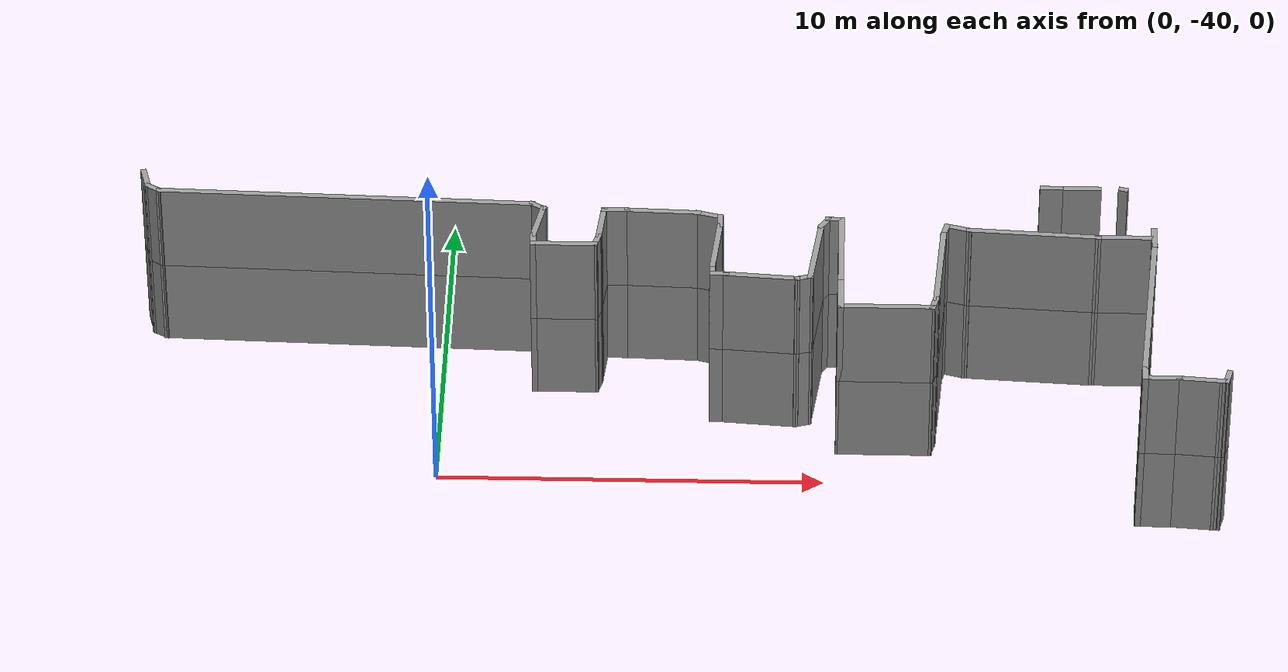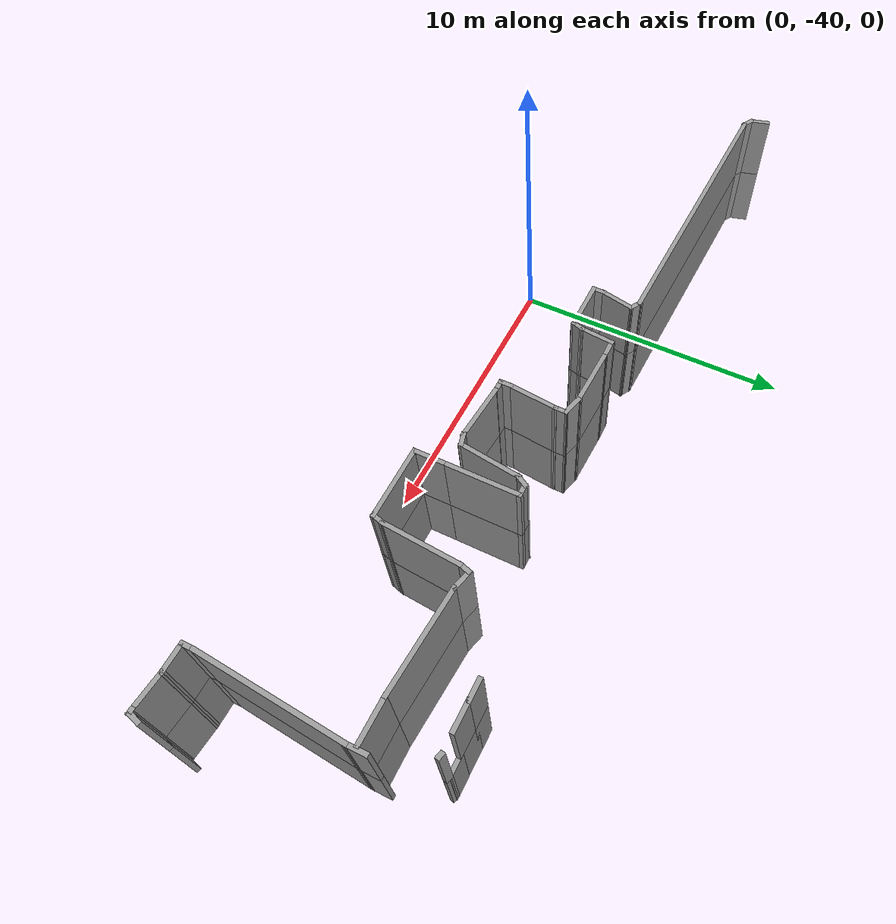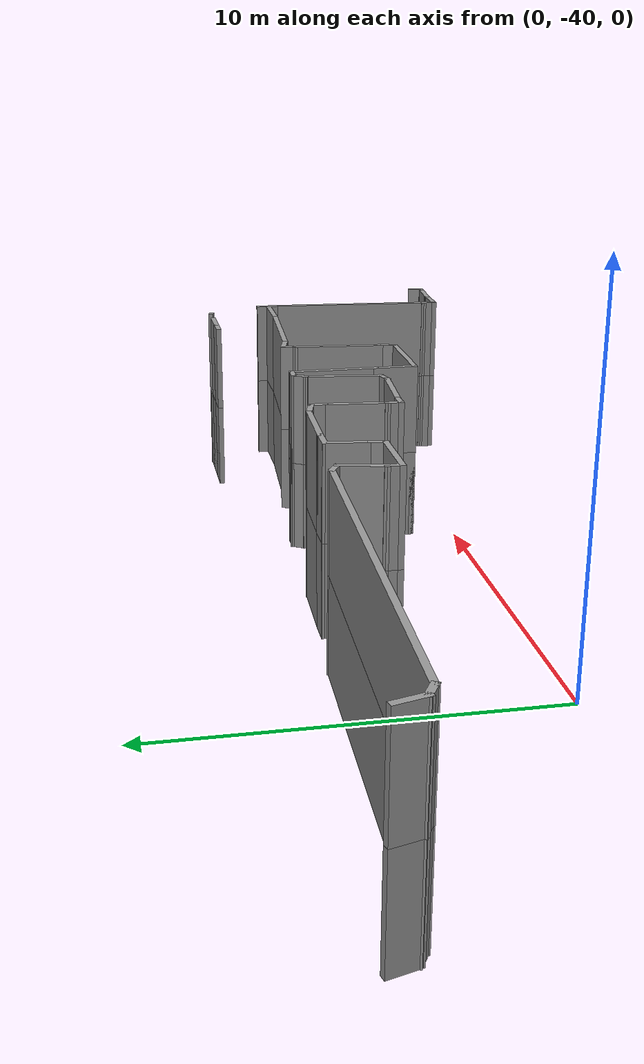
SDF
<sdf version="1.7">
 <model name="EnvDC00">
  <pose>8.4191 -5.62635 0 0 -0 0</pose>
  <link name="Wall_130">
   <collision name="Wall_130_Collision">
    <geometry><box><size>0.75 0.15 2.5</size></box></geometry>
    <pose>0 0 1.25 0 -0 0</pose>
   </collision>
   <visual name="Wall_130_Visual">
    <pose>0 0 1.25 0 -0 0</pose>
    <geometry><box><size>0.75 0.15 2.5</size></box></geometry>
    <material>
     <script><uri>file://media/materials/scripts/gazebo.material</uri><name>Gazebo/Grey</name></script>
     <ambient>1 1 1 1</ambient>
    </material>
    <meta><layer>0</layer></meta>
   </visual>
   <pose>-16.1981 -28.4923 0 0 -0 1.8326</pose>
  </link>
  <link name="Wall_199">
   <collision name="Wall_199_Collision">
    <geometry><box><size>0.75 0.15 2.5</size></box></geometry>
    <pose>0 0 1.25 0 -0 0</pose>
   </collision>
   <visual name="Wall_199_Visual">
    <pose>0 0 1.25 0 -0 0</pose>
    <geometry><box><size>0.75 0.15 2.5</size></box></geometry>
    <material>
     <script><uri>file://media/materials/scripts/gazebo.material</uri><name>Gazebo/Grey</name></script>
     <ambient>1 1 1 1</ambient>
    </material>
    <meta><layer>0</layer></meta>
   </visual>
   <pose>7.47234 -28.3016 0 0 -0 0</pose>
  </link>
  <link name="Wall_200">
   <collision name="Wall_200_Collision">
    <geometry><box><size>1 0.15 2.5</size></box></geometry>
    <pose>0 0 1.25 0 -0 0</pose>
   </collision>
   <visual name="Wall_200_Visual">
    <pose>0 0 1.25 0 -0 0</pose>
    <geometry><box><size>1 0.15 2.5</size></box></geometry>
    <material>
     <script><uri>file://media/materials/scripts/gazebo.material</uri><name>Gazebo/Grey</name></script>
     <ambient>1 1 1 1</ambient>
    </material>
    <meta><layer>0</layer></meta>
   </visual>
   <pose>8.19734 -28.3016 0 0 -0 0</pose>
  </link>
  <link name="Wall_201">
   <collision name="Wall_201_Collision">
    <geometry><box><size>0.75 0.15 2.5</size></box></geometry>
    <pose>0 0 1.25 0 -0 0</pose>
   </collision>
   <visual name="Wall_201_Visual">
    <pose>0 0 1.25 0 -0 0</pose>
    <geometry><box><size>0.75 0.15 2.5</size></box></geometry>
    <material>
     <script><uri>file://media/materials/scripts/gazebo.material</uri><name>Gazebo/Grey</name></script>
     <ambient>1 1 1 1</ambient>
    </material>
    <meta><layer>0</layer></meta>
   </visual>
   <pose>8.92234 -28.3016 0 0 -0 0</pose>
  </link>
  <link name="Wall_202">
   <collision name="Wall_202_Collision">
    <geometry><box><size>0.25 0.15 2.5</size></box></geometry>
    <pose>0 0 1.25 0 -0 0</pose>
   </collision>
   <visual name="Wall_202_Visual">
    <pose>0 0 1.25 0 -0 0</pose>
    <geometry><box><size>0.25 0.15 2.5</size></box></geometry>
    <material>
     <script><uri>file://media/materials/scripts/gazebo.material</uri><name>Gazebo/Grey</name></script>
     <ambient>1 1 1 1</ambient>
    </material>
    <meta><layer>0</layer></meta>
   </visual>
   <pose>9.27064 -28.3145 0 0 -0 -0.261799</pose>
  </link>
  <link name="Wall_207">
   <collision name="Wall_207_Collision">
    <geometry><box><size>0.25 0.15 2.5</size></box></geometry>
    <pose>0 0 1.25 0 -0 0</pose>
   </collision>
   <visual name="Wall_207_Visual">
    <pose>0 0 1.25 0 -0 0</pose>
    <geometry><box><size>0.25 0.15 2.5</size></box></geometry>
    <material>
     <script><uri>file://media/materials/scripts/gazebo.material</uri><name>Gazebo/Grey</name></script>
     <ambient>1 1 1 1</ambient>
    </material>
    <meta><layer>0</layer></meta>
   </visual>
   <pose>11.6412 -35.8531 0 0 -0 3.14159</pose>
  </link>
  <link name="Wall_208">
   <collision name="Wall_208_Collision">
    <geometry><box><size>1.24184 0.15 2.5</size></box></geometry>
    <pose>0 0 1.25 0 -0 0</pose>
   </collision>
   <visual name="Wall_208_Visual">
    <pose>0 0 1.25 0 -0 0</pose>
    <geometry><box><size>1.24184 0.15 2.5</size></box></geometry>
    <material>
     <script><uri>file://media/materials/scripts/gazebo.material</uri><name>Gazebo/Grey</name></script>
     <ambient>1 1 1 1</ambient>
    </material>
    <meta><layer>0</layer></meta>
   </visual>
   <pose>11.0472 -35.8078 0 0 -0 3.05853</pose>
  </link>
  <link name="Wall_209">
   <collision name="Wall_209_Collision">
    <geometry><box><size>1 0.15 2.5</size></box></geometry>
    <pose>0 0 1.25 0 -0 0</pose>
   </collision>
   <visual name="Wall_209_Visual">
    <pose>0 0 1.25 0 -0 0</pose>
    <geometry><box><size>1 0.15 2.5</size></box></geometry>
    <material>
     <script><uri>file://media/materials/scripts/gazebo.material</uri><name>Gazebo/Grey</name></script>
     <ambient>1 1 1 1</ambient>
    </material>
    <meta><layer>0</layer></meta>
   </visual>
   <pose>10.0781 -35.7625 0 0 -0 3.14159</pose>
  </link>
  <link name="Wall_211">
   <collision name="Wall_211_Collision">
    <geometry><box><size>0.5 0.15 2.5</size></box></geometry>
    <pose>0 0 1.25 0 -0 0</pose>
   </collision>
   <visual name="Wall_211_Visual">
    <pose>0 0 1.25 0 -0 0</pose>
    <geometry><box><size>0.5 0.15 2.5</size></box></geometry>
    <material>
     <script><uri>file://media/materials/scripts/gazebo.material</uri><name>Gazebo/Grey</name></script>
     <ambient>1 1 1 1</ambient>
    </material>
    <meta><layer>0</layer></meta>
   </visual>
   <pose>9.65311 -35.5875 0 0 -0 1.5708</pose>
  </link>
  <link name="Wall_212">
   <collision name="Wall_212_Collision">
    <geometry><box><size>5.0065 0.15 2.5</size></box></geometry>
    <pose>0 0 1.25 0 -0 0</pose>
   </collision>
   <visual name="Wall_212_Visual">
    <pose>0 0 1.25 0 -0 0</pose>
    <geometry><box><size>5.0065 0.15 2.5</size></box></geometry>
    <material>
     <script><uri>file://media/materials/scripts/gazebo.material</uri><name>Gazebo/Grey</name></script>
     <ambient>1 1 1 1</ambient>
    </material>
    <meta><layer>0</layer></meta>
   </visual>
   <pose>9.836 -32.9912 0 0 -0 1.49541</pose>
  </link>
  <link name="Wall_213">
   <collision name="Wall_213_Collision">
    <geometry><box><size>0.75 0.15 2.5</size></box></geometry>
    <pose>0 0 1.25 0 -0 0</pose>
   </collision>
   <visual name="Wall_213_Visual">
    <pose>0 0 1.25 0 -0 0</pose>
    <geometry><box><size>0.75 0.15 2.5</size></box></geometry>
    <material>
     <script><uri>file://media/materials/scripts/gazebo.material</uri><name>Gazebo/Grey</name></script>
     <ambient>1 1 1 1</ambient>
    </material>
    <meta><layer>0</layer></meta>
   </visual>
   <pose>10.0189 -30.2698 0 0 -0 1.5708</pose>
  </link>
  <link name="Wall_215">
   <collision name="Wall_215_Collision">
    <geometry><box><size>1.5 0.15 2.5</size></box></geometry>
    <pose>0 0 1.25 0 -0 0</pose>
   </collision>
   <visual name="Wall_215_Visual">
    <pose>0 0 1.25 0 -0 0</pose>
    <geometry><box><size>1.5 0.15 2.5</size></box></geometry>
    <material>
     <script><uri>file://media/materials/scripts/gazebo.material</uri><name>Gazebo/Grey</name></script>
     <ambient>1 1 1 1</ambient>
    </material>
    <meta><layer>0</layer></meta>
   </visual>
   <pose>9.25228 -30.2692 0 0 -0 3.14159</pose>
  </link>
  <link name="Wall_216">
   <collision name="Wall_216_Collision">
    <geometry><box><size>3.48078 0.15 2.5</size></box></geometry>
    <pose>0 0 1.25 0 -0 0</pose>
   </collision>
   <visual name="Wall_216_Visual">
    <pose>0 0 1.25 0 -0 0</pose>
    <geometry><box><size>3.48078 0.15 2.5</size></box></geometry>
    <material>
     <script><uri>file://media/materials/scripts/gazebo.material</uri><name>Gazebo/Grey</name></script>
     <ambient>1 1 1 1</ambient>
    </material>
    <meta><layer>0</layer></meta>
   </visual>
   <pose>6.91506 -30.1665 0 0 -0 3.07989</pose>
  </link>
  <link name="Wall_217">
   <collision name="Wall_217_Collision">
    <geometry><box><size>0.75 0.15 2.5</size></box></geometry>
    <pose>0 0 1.25 0 -0 0</pose>
   </collision>
   <visual name="Wall_217_Visual">
    <pose>0 0 1.25 0 -0 0</pose>
    <geometry><box><size>0.75 0.15 2.5</size></box></geometry>
    <material>
     <script><uri>file://media/materials/scripts/gazebo.material</uri><name>Gazebo/Grey</name></script>
     <ambient>1 1 1 1</ambient>
    </material>
    <meta><layer>0</layer></meta>
   </visual>
   <pose>4.96306 -29.9862 0 0 -0 2.87979</pose>
  </link>
  <link name="Wall_219">
   <collision name="Wall_219_Collision">
    <geometry><box><size>0.5 0.15 2.5</size></box></geometry>
    <pose>0 0 1.25 0 -0 0</pose>
   </collision>
   <visual name="Wall_219_Visual">
    <pose>0 0 1.25 0 -0 0</pose>
    <geometry><box><size>0.5 0.15 2.5</size></box></geometry>
    <material>
     <script><uri>file://media/materials/scripts/gazebo.material</uri><name>Gazebo/Grey</name></script>
     <ambient>1 1 1 1</ambient>
    </material>
    <meta><layer>0</layer></meta>
   </visual>
   <pose>4.62798 -30.0776 0 0 -0 -1.8326</pose>
  </link>
  <link name="Wall_220">
   <collision name="Wall_220_Collision">
    <geometry><box><size>2.73175 0.15 2.5</size></box></geometry>
    <pose>0 0 1.25 0 -0 0</pose>
   </collision>
   <visual name="Wall_220_Visual">
    <pose>0 0 1.25 0 -0 0</pose>
    <geometry><box><size>2.73175 0.15 2.5</size></box></geometry>
    <material>
     <script><uri>file://media/materials/scripts/gazebo.material</uri><name>Gazebo/Grey</name></script>
     <ambient>1 1 1 1</ambient>
    </material>
    <meta><layer>0</layer></meta>
   </visual>
   <pose>4.48563 -31.5338 0 0 -0 -1.64605</pose>
  </link>
  <link name="Wall_221">
   <collision name="Wall_221_Collision">
    <geometry><box><size>0.5 0.15 2.5</size></box></geometry>
    <pose>0 0 1.25 0 -0 0</pose>
   </collision>
   <visual name="Wall_221_Visual">
    <pose>0 0 1.25 0 -0 0</pose>
    <geometry><box><size>0.5 0.15 2.5</size></box></geometry>
    <material>
     <script><uri>file://media/materials/scripts/gazebo.material</uri><name>Gazebo/Grey</name></script>
     <ambient>1 1 1 1</ambient>
    </material>
    <meta><layer>0</layer></meta>
   </visual>
   <pose>4.34328 -32.9901 0 0 -0 -1.8326</pose>
  </link>
  <link name="Wall_222">
   <collision name="Wall_222_Collision">
    <geometry><box><size>2.5 0.15 2.5</size></box></geometry>
    <pose>0 0 1.25 0 -0 0</pose>
   </collision>
   <visual name="Wall_222_Visual">
    <pose>0 0 1.25 0 -0 0</pose>
    <geometry><box><size>2.5 0.15 2.5</size></box></geometry>
    <material>
     <script><uri>file://media/materials/scripts/gazebo.material</uri><name>Gazebo/Grey</name></script>
     <ambient>1 1 1 1</ambient>
    </material>
    <meta><layer>0</layer></meta>
   </visual>
   <pose>3.12299 -33.1591 0 0 -0 3.14159</pose>
  </link>
  <link name="Wall_223">
   <collision name="Wall_223_Collision">
    <geometry><box><size>1.25 0.15 2.5</size></box></geometry>
    <pose>0 0 1.25 0 -0 0</pose>
   </collision>
   <visual name="Wall_223_Visual">
    <pose>0 0 1.25 0 -0 0</pose>
    <geometry><box><size>1.25 0.15 2.5</size></box></geometry>
    <material>
     <script><uri>file://media/materials/scripts/gazebo.material</uri><name>Gazebo/Grey</name></script>
     <ambient>1 1 1 1</ambient>
    </material>
    <meta><layer>0</layer></meta>
   </visual>
   <pose>1.94799 -32.6091 0 0 -0 1.5708</pose>
  </link>
  <link name="Wall_224">
   <collision name="Wall_224_Collision">
    <geometry><box><size>2.5 0.15 2.5</size></box></geometry>
    <pose>0 0 1.25 0 -0 0</pose>
   </collision>
   <visual name="Wall_224_Visual">
    <pose>0 0 1.25 0 -0 0</pose>
    <geometry><box><size>2.5 0.15 2.5</size></box></geometry>
    <material>
     <script><uri>file://media/materials/scripts/gazebo.material</uri><name>Gazebo/Grey</name></script>
     <ambient>1 1 1 1</ambient>
    </material>
    <meta><layer>0</layer></meta>
   </visual>
   <pose>1.94799 -30.8841 0 0 -0 1.5708</pose>
  </link>
  <link name="Wall_227">
   <collision name="Wall_227_Collision">
    <geometry><box><size>0.5 0.15 2.5</size></box></geometry>
    <pose>0 0 1.25 0 -0 0</pose>
   </collision>
   <visual name="Wall_227_Visual">
    <pose>0 0 1.25 0 -0 0</pose>
    <geometry><box><size>0.5 0.15 2.5</size></box></geometry>
    <material>
     <script><uri>file://media/materials/scripts/gazebo.material</uri><name>Gazebo/Grey</name></script>
     <ambient>1 1 1 1</ambient>
    </material>
    <meta><layer>0</layer></meta>
   </visual>
   <pose>1.77299 -29.7091 0 0 -0 3.14159</pose>
  </link>
  <link name="Wall_228">
   <collision name="Wall_228_Collision">
    <geometry><box><size>0.5 0.15 2.5</size></box></geometry>
    <pose>0 0 1.25 0 -0 0</pose>
   </collision>
   <visual name="Wall_228_Visual">
    <pose>0 0 1.25 0 -0 0</pose>
    <geometry><box><size>0.5 0.15 2.5</size></box></geometry>
    <material>
     <script><uri>file://media/materials/scripts/gazebo.material</uri><name>Gazebo/Grey</name></script>
     <ambient>1 1 1 1</ambient>
    </material>
    <meta><layer>0</layer></meta>
   </visual>
   <pose>1.51049 -29.8607 0 0 -0 -2.0944</pose>
  </link>
  <link name="Wall_229">
   <collision name="Wall_229_Collision">
    <geometry><box><size>2.17641 0.15 2.5</size></box></geometry>
    <pose>0 0 1.25 0 -0 0</pose>
   </collision>
   <visual name="Wall_229_Visual">
    <pose>0 0 1.25 0 -0 0</pose>
    <geometry><box><size>2.17641 0.15 2.5</size></box></geometry>
    <material>
     <script><uri>file://media/materials/scripts/gazebo.material</uri><name>Gazebo/Grey</name></script>
     <ambient>1 1 1 1</ambient>
    </material>
    <meta><layer>0</layer></meta>
   </visual>
   <pose>1.29203 -31.0169 0 0 -0 -1.70042</pose>
  </link>
  <link name="Wall_230">
   <collision name="Wall_230_Collision">
    <geometry><box><size>0.5 0.15 2.5</size></box></geometry>
    <pose>0 0 1.25 0 -0 0</pose>
   </collision>
   <visual name="Wall_230_Visual">
    <pose>0 0 1.25 0 -0 0</pose>
    <geometry><box><size>0.5 0.15 2.5</size></box></geometry>
    <material>
     <script><uri>file://media/materials/scripts/gazebo.material</uri><name>Gazebo/Grey</name></script>
     <ambient>1 1 1 1</ambient>
    </material>
    <meta><layer>0</layer></meta>
   </visual>
   <pose>0.992028 -32.0669 0 0 -0 -2.87979</pose>
  </link>
  <link name="Wall_232">
   <collision name="Wall_232_Collision">
    <geometry><box><size>1.97866 0.15 2.5</size></box></geometry>
    <pose>0 0 1.25 0 -0 0</pose>
   </collision>
   <visual name="Wall_232_Visual">
    <pose>0 0 1.25 0 -0 0</pose>
    <geometry><box><size>1.97866 0.15 2.5</size></box></geometry>
    <material>
     <script><uri>file://media/materials/scripts/gazebo.material</uri><name>Gazebo/Grey</name></script>
     <ambient>1 1 1 1</ambient>
    </material>
    <meta><layer>0</layer></meta>
   </visual>
   <pose>-0.088565 -32.041 0 0 -0 3.06364</pose>
  </link>
  <link name="Wall_233">
   <collision name="Wall_233_Collision">
    <geometry><box><size>0.5 0.15 2.5</size></box></geometry>
    <pose>0 0 1.25 0 -0 0</pose>
   </collision>
   <visual name="Wall_233_Visual">
    <pose>0 0 1.25 0 -0 0</pose>
    <geometry><box><size>0.5 0.15 2.5</size></box></geometry>
    <material>
     <script><uri>file://media/materials/scripts/gazebo.material</uri><name>Gazebo/Grey</name></script>
     <ambient>1 1 1 1</ambient>
    </material>
    <meta><layer>0</layer></meta>
   </visual>
   <pose>-1.17512 -31.9634 0 0 -0 3.14159</pose>
  </link>
  <link name="Wall_235">
   <collision name="Wall_235_Collision">
    <geometry><box><size>0.5 0.15 2.5</size></box></geometry>
    <pose>0 0 1.25 0 -0 0</pose>
   </collision>
   <visual name="Wall_235_Visual">
    <pose>0 0 1.25 0 -0 0</pose>
    <geometry><box><size>0.5 0.15 2.5</size></box></geometry>
    <material>
     <script><uri>file://media/materials/scripts/gazebo.material</uri><name>Gazebo/Grey</name></script>
     <ambient>1 1 1 1</ambient>
    </material>
    <meta><layer>0</layer></meta>
   </visual>
   <pose>-1.35012 -31.7884 0 0 -0 1.5708</pose>
  </link>
  <link name="Wall_236">
   <collision name="Wall_236_Collision">
    <geometry><box><size>1.73717 0.15 2.5</size></box></geometry>
    <pose>0 0 1.25 0 -0 0</pose>
   </collision>
   <visual name="Wall_236_Visual">
    <pose>0 0 1.25 0 -0 0</pose>
    <geometry><box><size>1.73717 0.15 2.5</size></box></geometry>
    <material>
     <script><uri>file://media/materials/scripts/gazebo.material</uri><name>Gazebo/Grey</name></script>
     <ambient>1 1 1 1</ambient>
    </material>
    <meta><layer>0</layer></meta>
   </visual>
   <pose>-1.27248 -30.8236 0 0 -0 1.4728</pose>
  </link>
  <link name="Wall_237">
   <collision name="Wall_237_Collision">
    <geometry><box><size>0.5 0.15 2.5</size></box></geometry>
    <pose>0 0 1.25 0 -0 0</pose>
   </collision>
   <visual name="Wall_237_Visual">
    <pose>0 0 1.25 0 -0 0</pose>
    <geometry><box><size>0.5 0.15 2.5</size></box></geometry>
    <material>
     <script><uri>file://media/materials/scripts/gazebo.material</uri><name>Gazebo/Grey</name></script>
     <ambient>1 1 1 1</ambient>
    </material>
    <meta><layer>0</layer></meta>
   </visual>
   <pose>-1.19483 -29.8588 0 0 -0 1.5708</pose>
  </link>
  <link name="Wall_239">
   <collision name="Wall_239_Collision">
    <geometry><box><size>0.75 0.15 2.5</size></box></geometry>
    <pose>0 0 1.25 0 -0 0</pose>
   </collision>
   <visual name="Wall_239_Visual">
    <pose>0 0 1.25 0 -0 0</pose>
    <geometry><box><size>0.75 0.15 2.5</size></box></geometry>
    <material>
     <script><uri>file://media/materials/scripts/gazebo.material</uri><name>Gazebo/Grey</name></script>
     <ambient>1 1 1 1</ambient>
    </material>
    <meta><layer>0</layer></meta>
   </visual>
   <pose>-1.48461 -29.6062 0 0 -0 2.87979</pose>
  </link>
  <link name="Wall_240">
   <collision name="Wall_240_Collision">
    <geometry><box><size>1.99262 0.15 2.5</size></box></geometry>
    <pose>0 0 1.25 0 -0 0</pose>
   </collision>
   <visual name="Wall_240_Visual">
    <pose>0 0 1.25 0 -0 0</pose>
    <geometry><box><size>1.99262 0.15 2.5</size></box></geometry>
    <material>
     <script><uri>file://media/materials/scripts/gazebo.material</uri><name>Gazebo/Grey</name></script>
     <ambient>1 1 1 1</ambient>
    </material>
    <meta><layer>0</layer></meta>
   </visual>
   <pose>-2.69513 -29.4962 0 0 -0 3.10647</pose>
  </link>
  <link name="Wall_241">
   <collision name="Wall_241_Collision">
    <geometry><box><size>0.75 0.15 2.5</size></box></geometry>
    <pose>0 0 1.25 0 -0 0</pose>
   </collision>
   <visual name="Wall_241_Visual">
    <pose>0 0 1.25 0 -0 0</pose>
    <geometry><box><size>0.75 0.15 2.5</size></box></geometry>
    <material>
     <script><uri>file://media/materials/scripts/gazebo.material</uri><name>Gazebo/Grey</name></script>
     <ambient>1 1 1 1</ambient>
    </material>
    <meta><layer>0</layer></meta>
   </visual>
   <pose>-3.91587 -29.4638 0 0 -0 3.14159</pose>
  </link>
  <link name="Wall_243">
   <collision name="Wall_243_Collision">
    <geometry><box><size>1.21755 0.15 2.5</size></box></geometry>
    <pose>0 0 1.25 0 -0 0</pose>
   </collision>
   <visual name="Wall_243_Visual">
    <pose>0 0 1.25 0 -0 0</pose>
    <geometry><box><size>1.21755 0.15 2.5</size></box></geometry>
    <material>
     <script><uri>file://media/materials/scripts/gazebo.material</uri><name>Gazebo/Grey</name></script>
     <ambient>1 1 1 1</ambient>
    </material>
    <meta><layer>0</layer></meta>
   </visual>
   <pose>-4.26763 -29.9951 0 0 -0 -1.66793</pose>
  </link>
  <link name="Wall_244">
   <collision name="Wall_244_Collision">
    <geometry><box><size>0.5 0.15 2.5</size></box></geometry>
    <pose>0 0 1.25 0 -0 0</pose>
   </collision>
   <visual name="Wall_244_Visual">
    <pose>0 0 1.25 0 -0 0</pose>
    <geometry><box><size>0.5 0.15 2.5</size></box></geometry>
    <material>
     <script><uri>file://media/materials/scripts/gazebo.material</uri><name>Gazebo/Grey</name></script>
     <ambient>1 1 1 1</ambient>
    </material>
    <meta><layer>0</layer></meta>
   </visual>
   <pose>-4.36469 -30.6954 0 0 -0 -1.8326</pose>
  </link>
  <link name="Wall_245">
   <collision name="Wall_245_Collision">
    <geometry><box><size>1.75 0.15 2.5</size></box></geometry>
    <pose>0 0 1.25 0 -0 0</pose>
   </collision>
   <visual name="Wall_245_Visual">
    <pose>0 0 1.25 0 -0 0</pose>
    <geometry><box><size>1.75 0.15 2.5</size></box></geometry>
    <material>
     <script><uri>file://media/materials/scripts/gazebo.material</uri><name>Gazebo/Grey</name></script>
     <ambient>1 1 1 1</ambient>
    </material>
    <meta><layer>0</layer></meta>
   </visual>
   <pose>-5.20998 -30.8644 0 0 -0 3.14159</pose>
  </link>
  <link name="Wall_246">
   <collision name="Wall_246_Collision">
    <geometry><box><size>0.5 0.15 2.5</size></box></geometry>
    <pose>0 0 1.25 0 -0 0</pose>
   </collision>
   <visual name="Wall_246_Visual">
    <pose>0 0 1.25 0 -0 0</pose>
    <geometry><box><size>0.5 0.15 2.5</size></box></geometry>
    <material>
     <script><uri>file://media/materials/scripts/gazebo.material</uri><name>Gazebo/Grey</name></script>
     <ambient>1 1 1 1</ambient>
    </material>
    <meta><layer>0</layer></meta>
   </visual>
   <pose>-6.00998 -30.6894 0 0 -0 1.5708</pose>
  </link>
  <link name="Wall_248">
   <collision name="Wall_248_Collision">
    <geometry><box><size>1.2434 0.15 2.5</size></box></geometry>
    <pose>0 0 1.25 0 -0 0</pose>
   </collision>
   <visual name="Wall_248_Visual">
    <pose>0 0 1.25 0 -0 0</pose>
    <geometry><box><size>1.2434 0.15 2.5</size></box></geometry>
    <material>
     <script><uri>file://media/materials/scripts/gazebo.material</uri><name>Gazebo/Grey</name></script>
     <ambient>1 1 1 1</ambient>
    </material>
    <meta><layer>0</layer></meta>
   </visual>
   <pose>-5.89998 -29.9789 0 0 -0 1.36821</pose>
  </link>
  <link name="Wall_250">
   <collision name="Wall_250_Collision">
    <geometry><box><size>0.5 0.15 2.5</size></box></geometry>
    <pose>0 0 1.25 0 -0 0</pose>
   </collision>
   <visual name="Wall_250_Visual">
    <pose>0 0 1.25 0 -0 0</pose>
    <geometry><box><size>0.5 0.15 2.5</size></box></geometry>
    <material>
     <script><uri>file://media/materials/scripts/gazebo.material</uri><name>Gazebo/Grey</name></script>
     <ambient>1 1 1 1</ambient>
    </material>
    <meta><layer>0</layer></meta>
   </visual>
   <pose>-15.9689 -28.8696 0 0 -0 -0.523599</pose>
  </link>
  <link name="Wall_251">
   <collision name="Wall_251_Collision">
    <geometry><box><size>9.87927 0.15 2.5</size></box></geometry>
    <pose>0 0 1.25 0 -0 0</pose>
   </collision>
   <visual name="Wall_251_Visual">
    <pose>0 0 1.25 0 -0 0</pose>
    <geometry><box><size>9.87927 0.15 2.5</size></box></geometry>
    <material>
     <script><uri>file://media/materials/scripts/gazebo.material</uri><name>Gazebo/Grey</name></script>
     <ambient>1 1 1 1</ambient>
    </material>
    <meta><layer>0</layer></meta>
   </visual>
   <pose>-10.9552 -29.1127 0 0 -0 -0.032002</pose>
  </link>
  <link name="Wall_252">
   <collision name="Wall_252_Collision">
    <geometry><box><size>0.5 0.15 2.5</size></box></geometry>
    <pose>0 0 1.25 0 -0 0</pose>
   </collision>
   <visual name="Wall_252_Visual">
    <pose>0 0 1.25 0 -0 0</pose>
    <geometry><box><size>0.5 0.15 2.5</size></box></geometry>
    <material>
     <script><uri>file://media/materials/scripts/gazebo.material</uri><name>Gazebo/Grey</name></script>
     <ambient>1 1 1 1</ambient>
    </material>
    <meta><layer>0</layer></meta>
   </visual>
   <pose>-5.94154 -29.3559 0 0 -0 -0.523599</pose>
  </link>
  <link name="Wall_267">
   <collision name="Wall_267_Collision">
    <geometry><box><size>0.5 0.15 2.5</size></box></geometry>
    <pose>0 0 1.25 0 -0 0</pose>
   </collision>
   <visual name="Wall_267_Visual">
    <pose>0 0 1.25 0 -0 0</pose>
    <geometry><box><size>0.5 0.15 2.5</size></box></geometry>
    <material>
     <script><uri>file://media/materials/scripts/gazebo.material</uri><name>Gazebo/Grey</name></script>
     <ambient>1 1 1 1</ambient>
    </material>
    <meta><layer>1</layer></meta>
   </visual>
   <pose>11.7365 -35.6841 2.5 0 -0 1.309</pose>
  </link>
  <link name="Wall_328">
   <collision name="Wall_328_Collision">
    <geometry><box><size>0.75 0.15 2.5</size></box></geometry>
    <pose>0 0 1.25 0 -0 0</pose>
   </collision>
   <visual name="Wall_328_Visual">
    <pose>0 0 1.25 0 -0 0</pose>
    <geometry><box><size>0.75 0.15 2.5</size></box></geometry>
    <material>
     <script><uri>file://media/materials/scripts/gazebo.material</uri><name>Gazebo/Grey</name></script>
     <ambient>1 1 1 1</ambient>
    </material>
    <meta><layer>1</layer></meta>
   </visual>
   <pose>-16.1981 -28.4923 2.5 0 -0 1.8326</pose>
  </link>
  <link name="Wall_373">
   <collision name="Wall_373_Collision">
    <geometry><box><size>0.75 0.15 2.5</size></box></geometry>
    <pose>0 0 1.25 0 -0 0</pose>
   </collision>
   <visual name="Wall_373_Visual">
    <pose>0 0 1.25 0 -0 0</pose>
    <geometry><box><size>0.75 0.15 2.5</size></box></geometry>
    <material>
     <script><uri>file://media/materials/scripts/gazebo.material</uri><name>Gazebo/Grey</name></script>
     <ambient>1 1 1 1</ambient>
    </material>
    <meta><layer>1</layer></meta>
   </visual>
   <pose>7.47234 -28.3016 2.5 0 -0 0</pose>
  </link>
  <link name="Wall_374">
   <collision name="Wall_374_Collision">
    <geometry><box><size>1 0.15 2.5</size></box></geometry>
    <pose>0 0 1.25 0 -0 0</pose>
   </collision>
   <visual name="Wall_374_Visual">
    <pose>0 0 1.25 0 -0 0</pose>
    <geometry><box><size>1 0.15 2.5</size></box></geometry>
    <material>
     <script><uri>file://media/materials/scripts/gazebo.material</uri><name>Gazebo/Grey</name></script>
     <ambient>1 1 1 1</ambient>
    </material>
    <meta><layer>1</layer></meta>
   </visual>
   <pose>8.19734 -28.3016 2.5 0 -0 0</pose>
  </link>
  <link name="Wall_376">
   <collision name="Wall_376_Collision">
    <geometry><box><size>0.25 0.15 2.5</size></box></geometry>
    <pose>0 0 1.25 0 -0 0</pose>
   </collision>
   <visual name="Wall_376_Visual">
    <pose>0 0 1.25 0 -0 0</pose>
    <geometry><box><size>0.25 0.15 2.5</size></box></geometry>
    <material>
     <script><uri>file://media/materials/scripts/gazebo.material</uri><name>Gazebo/Grey</name></script>
     <ambient>1 1 1 1</ambient>
    </material>
    <meta><layer>1</layer></meta>
   </visual>
   <pose>9.27064 -28.3145 2.5 0 -0 -0.261799</pose>
  </link>
  <link name="Wall_380">
   <collision name="Wall_380_Collision">
    <geometry><box><size>0.25 0.15 2.5</size></box></geometry>
    <pose>0 0 1.25 0 -0 0</pose>
   </collision>
   <visual name="Wall_380_Visual">
    <pose>0 0 1.25 0 -0 0</pose>
    <geometry><box><size>0.25 0.15 2.5</size></box></geometry>
    <material>
     <script><uri>file://media/materials/scripts/gazebo.material</uri><name>Gazebo/Grey</name></script>
     <ambient>1 1 1 1</ambient>
    </material>
    <meta><layer>1</layer></meta>
   </visual>
   <pose>11.6412 -35.8531 2.5 0 -0 3.14159</pose>
  </link>
  <link name="Wall_381">
   <collision name="Wall_381_Collision">
    <geometry><box><size>1.24184 0.15 2.5</size></box></geometry>
    <pose>0 0 1.25 0 -0 0</pose>
   </collision>
   <visual name="Wall_381_Visual">
    <pose>0 0 1.25 0 -0 0</pose>
    <geometry><box><size>1.24184 0.15 2.5</size></box></geometry>
    <material>
     <script><uri>file://media/materials/scripts/gazebo.material</uri><name>Gazebo/Grey</name></script>
     <ambient>1 1 1 1</ambient>
    </material>
    <meta><layer>1</layer></meta>
   </visual>
   <pose>11.0472 -35.8078 2.5 0 -0 3.05853</pose>
  </link>
  <link name="Wall_382">
   <collision name="Wall_382_Collision">
    <geometry><box><size>1 0.15 2.5</size></box></geometry>
    <pose>0 0 1.25 0 -0 0</pose>
   </collision>
   <visual name="Wall_382_Visual">
    <pose>0 0 1.25 0 -0 0</pose>
    <geometry><box><size>1 0.15 2.5</size></box></geometry>
    <material>
     <script><uri>file://media/materials/scripts/gazebo.material</uri><name>Gazebo/Grey</name></script>
     <ambient>1 1 1 1</ambient>
    </material>
    <meta><layer>1</layer></meta>
   </visual>
   <pose>10.0781 -35.7625 2.5 0 -0 3.14159</pose>
  </link>
  <link name="Wall_383">
   <collision name="Wall_383_Collision">
    <geometry><box><size>0.5 0.15 2.5</size></box></geometry>
    <pose>0 0 1.25 0 -0 0</pose>
   </collision>
   <visual name="Wall_383_Visual">
    <pose>0 0 1.25 0 -0 0</pose>
    <geometry><box><size>0.5 0.15 2.5</size></box></geometry>
    <material>
     <script><uri>file://media/materials/scripts/gazebo.material</uri><name>Gazebo/Grey</name></script>
     <ambient>1 1 1 1</ambient>
    </material>
    <meta><layer>1</layer></meta>
   </visual>
   <pose>9.65311 -35.5875 2.5 0 -0 1.5708</pose>
  </link>
  <link name="Wall_384">
   <collision name="Wall_384_Collision">
    <geometry><box><size>5.0065 0.15 2.5</size></box></geometry>
    <pose>0 0 1.25 0 -0 0</pose>
   </collision>
   <visual name="Wall_384_Visual">
    <pose>0 0 1.25 0 -0 0</pose>
    <geometry><box><size>5.0065 0.15 2.5</size></box></geometry>
    <material>
     <script><uri>file://media/materials/scripts/gazebo.material</uri><name>Gazebo/Grey</name></script>
     <ambient>1 1 1 1</ambient>
    </material>
    <meta><layer>1</layer></meta>
   </visual>
   <pose>9.836 -32.9912 2.5 0 -0 1.49541</pose>
  </link>
  <link name="Wall_385">
   <collision name="Wall_385_Collision">
    <geometry><box><size>0.75 0.15 2.5</size></box></geometry>
    <pose>0 0 1.25 0 -0 0</pose>
   </collision>
   <visual name="Wall_385_Visual">
    <pose>0 0 1.25 0 -0 0</pose>
    <geometry><box><size>0.75 0.15 2.5</size></box></geometry>
    <material>
     <script><uri>file://media/materials/scripts/gazebo.material</uri><name>Gazebo/Grey</name></script>
     <ambient>1 1 1 1</ambient>
    </material>
    <meta><layer>1</layer></meta>
   </visual>
   <pose>10.0189 -30.2698 2.5 0 -0 1.5708</pose>
  </link>
  <link name="Wall_386">
   <collision name="Wall_386_Collision">
    <geometry><box><size>1.5 0.15 2.5</size></box></geometry>
    <pose>0 0 1.25 0 -0 0</pose>
   </collision>
   <visual name="Wall_386_Visual">
    <pose>0 0 1.25 0 -0 0</pose>
    <geometry><box><size>1.5 0.15 2.5</size></box></geometry>
    <material>
     <script><uri>file://media/materials/scripts/gazebo.material</uri><name>Gazebo/Grey</name></script>
     <ambient>1 1 1 1</ambient>
    </material>
    <meta><layer>1</layer></meta>
   </visual>
   <pose>9.25228 -30.2692 2.5 0 -0 3.14159</pose>
  </link>
  <link name="Wall_387">
   <collision name="Wall_387_Collision">
    <geometry><box><size>3.48078 0.15 2.5</size></box></geometry>
    <pose>0 0 1.25 0 -0 0</pose>
   </collision>
   <visual name="Wall_387_Visual">
    <pose>0 0 1.25 0 -0 0</pose>
    <geometry><box><size>3.48078 0.15 2.5</size></box></geometry>
    <material>
     <script><uri>file://media/materials/scripts/gazebo.material</uri><name>Gazebo/Grey</name></script>
     <ambient>1 1 1 1</ambient>
    </material>
    <meta><layer>1</layer></meta>
   </visual>
   <pose>6.91506 -30.1665 2.5 0 -0 3.07989</pose>
  </link>
  <link name="Wall_388">
   <collision name="Wall_388_Collision">
    <geometry><box><size>0.75 0.15 2.5</size></box></geometry>
    <pose>0 0 1.25 0 -0 0</pose>
   </collision>
   <visual name="Wall_388_Visual">
    <pose>0 0 1.25 0 -0 0</pose>
    <geometry><box><size>0.75 0.15 2.5</size></box></geometry>
    <material>
     <script><uri>file://media/materials/scripts/gazebo.material</uri><name>Gazebo/Grey</name></script>
     <ambient>1 1 1 1</ambient>
    </material>
    <meta><layer>1</layer></meta>
   </visual>
   <pose>4.96306 -29.9862 2.5 0 -0 2.87979</pose>
  </link>
  <link name="Wall_389">
   <collision name="Wall_389_Collision">
    <geometry><box><size>0.5 0.15 2.5</size></box></geometry>
    <pose>0 0 1.25 0 -0 0</pose>
   </collision>
   <visual name="Wall_389_Visual">
    <pose>0 0 1.25 0 -0 0</pose>
    <geometry><box><size>0.5 0.15 2.5</size></box></geometry>
    <material>
     <script><uri>file://media/materials/scripts/gazebo.material</uri><name>Gazebo/Grey</name></script>
     <ambient>1 1 1 1</ambient>
    </material>
    <meta><layer>1</layer></meta>
   </visual>
   <pose>4.62798 -30.0776 2.5 0 -0 -1.8326</pose>
  </link>
  <link name="Wall_390">
   <collision name="Wall_390_Collision">
    <geometry><box><size>2.73175 0.15 2.5</size></box></geometry>
    <pose>0 0 1.25 0 -0 0</pose>
   </collision>
   <visual name="Wall_390_Visual">
    <pose>0 0 1.25 0 -0 0</pose>
    <geometry><box><size>2.73175 0.15 2.5</size></box></geometry>
    <material>
     <script><uri>file://media/materials/scripts/gazebo.material</uri><name>Gazebo/Grey</name></script>
     <ambient>1 1 1 1</ambient>
    </material>
    <meta><layer>1</layer></meta>
   </visual>
   <pose>4.48563 -31.5338 2.5 0 -0 -1.64605</pose>
  </link>
  <link name="Wall_391">
   <collision name="Wall_391_Collision">
    <geometry><box><size>0.5 0.15 2.5</size></box></geometry>
    <pose>0 0 1.25 0 -0 0</pose>
   </collision>
   <visual name="Wall_391_Visual">
    <pose>0 0 1.25 0 -0 0</pose>
    <geometry><box><size>0.5 0.15 2.5</size></box></geometry>
    <material>
     <script><uri>file://media/materials/scripts/gazebo.material</uri><name>Gazebo/Grey</name></script>
     <ambient>1 1 1 1</ambient>
    </material>
    <meta><layer>1</layer></meta>
   </visual>
   <pose>4.34328 -32.9901 2.5 0 -0 -1.8326</pose>
  </link>
  <link name="Wall_392">
   <collision name="Wall_392_Collision">
    <geometry><box><size>2.5 0.15 2.5</size></box></geometry>
    <pose>0 0 1.25 0 -0 0</pose>
   </collision>
   <visual name="Wall_392_Visual">
    <pose>0 0 1.25 0 -0 0</pose>
    <geometry><box><size>2.5 0.15 2.5</size></box></geometry>
    <material>
     <script><uri>file://media/materials/scripts/gazebo.material</uri><name>Gazebo/Grey</name></script>
     <ambient>1 1 1 1</ambient>
    </material>
    <meta><layer>1</layer></meta>
   </visual>
   <pose>3.12299 -33.1591 2.5 0 -0 3.14159</pose>
  </link>
  <link name="Wall_393">
   <collision name="Wall_393_Collision">
    <geometry><box><size>1.25 0.15 2.5</size></box></geometry>
    <pose>0 0 1.25 0 -0 0</pose>
   </collision>
   <visual name="Wall_393_Visual">
    <pose>0 0 1.25 0 -0 0</pose>
    <geometry><box><size>1.25 0.15 2.5</size></box></geometry>
    <material>
     <script><uri>file://media/materials/scripts/gazebo.material</uri><name>Gazebo/Grey</name></script>
     <ambient>1 1 1 1</ambient>
    </material>
    <meta><layer>1</layer></meta>
   </visual>
   <pose>1.94799 -32.6091 2.5 0 -0 1.5708</pose>
  </link>
  <link name="Wall_394">
   <collision name="Wall_394_Collision">
    <geometry><box><size>2.5 0.15 2.5</size></box></geometry>
    <pose>0 0 1.25 0 -0 0</pose>
   </collision>
   <visual name="Wall_394_Visual">
    <pose>0 0 1.25 0 -0 0</pose>
    <geometry><box><size>2.5 0.15 2.5</size></box></geometry>
    <material>
     <script><uri>file://media/materials/scripts/gazebo.material</uri><name>Gazebo/Grey</name></script>
     <ambient>1 1 1 1</ambient>
    </material>
    <meta><layer>1</layer></meta>
   </visual>
   <pose>1.94799 -30.8841 2.5 0 -0 1.5708</pose>
  </link>
  <link name="Wall_395">
   <collision name="Wall_395_Collision">
    <geometry><box><size>0.5 0.15 2.5</size></box></geometry>
    <pose>0 0 1.25 0 -0 0</pose>
   </collision>
   <visual name="Wall_395_Visual">
    <pose>0 0 1.25 0 -0 0</pose>
    <geometry><box><size>0.5 0.15 2.5</size></box></geometry>
    <material>
     <script><uri>file://media/materials/scripts/gazebo.material</uri><name>Gazebo/Grey</name></script>
     <ambient>1 1 1 1</ambient>
    </material>
    <meta><layer>1</layer></meta>
   </visual>
   <pose>1.77299 -29.7091 2.5 0 -0 3.14159</pose>
  </link>
  <link name="Wall_396">
   <collision name="Wall_396_Collision">
    <geometry><box><size>0.5 0.15 2.5</size></box></geometry>
    <pose>0 0 1.25 0 -0 0</pose>
   </collision>
   <visual name="Wall_396_Visual">
    <pose>0 0 1.25 0 -0 0</pose>
    <geometry><box><size>0.5 0.15 2.5</size></box></geometry>
    <material>
     <script><uri>file://media/materials/scripts/gazebo.material</uri><name>Gazebo/Grey</name></script>
     <ambient>1 1 1 1</ambient>
    </material>
    <meta><layer>1</layer></meta>
   </visual>
   <pose>1.51049 -29.8607 2.5 0 -0 -2.0944</pose>
  </link>
  <link name="Wall_397">
   <collision name="Wall_397_Collision">
    <geometry><box><size>2.17641 0.15 2.5</size></box></geometry>
    <pose>0 0 1.25 0 -0 0</pose>
   </collision>
   <visual name="Wall_397_Visual">
    <pose>0 0 1.25 0 -0 0</pose>
    <geometry><box><size>2.17641 0.15 2.5</size></box></geometry>
    <material>
     <script><uri>file://media/materials/scripts/gazebo.material</uri><name>Gazebo/Grey</name></script>
     <ambient>1 1 1 1</ambient>
    </material>
    <meta><layer>1</layer></meta>
   </visual>
   <pose>1.29203 -31.0169 2.5 0 -0 -1.70042</pose>
  </link>
  <link name="Wall_398">
   <collision name="Wall_398_Collision">
    <geometry><box><size>0.5 0.15 2.5</size></box></geometry>
    <pose>0 0 1.25 0 -0 0</pose>
   </collision>
   <visual name="Wall_398_Visual">
    <pose>0 0 1.25 0 -0 0</pose>
    <geometry><box><size>0.5 0.15 2.5</size></box></geometry>
    <material>
     <script><uri>file://media/materials/scripts/gazebo.material</uri><name>Gazebo/Grey</name></script>
     <ambient>1 1 1 1</ambient>
    </material>
    <meta><layer>1</layer></meta>
   </visual>
   <pose>0.992028 -32.0669 2.5 0 -0 -2.87979</pose>
  </link>
  <link name="Wall_399">
   <collision name="Wall_399_Collision">
    <geometry><box><size>1.97866 0.15 2.5</size></box></geometry>
    <pose>0 0 1.25 0 -0 0</pose>
   </collision>
   <visual name="Wall_399_Visual">
    <pose>0 0 1.25 0 -0 0</pose>
    <geometry><box><size>1.97866 0.15 2.5</size></box></geometry>
    <material>
     <script><uri>file://media/materials/scripts/gazebo.material</uri><name>Gazebo/Grey</name></script>
     <ambient>1 1 1 1</ambient>
    </material>
    <meta><layer>1</layer></meta>
   </visual>
   <pose>-0.088565 -32.041 2.5 0 -0 3.06364</pose>
  </link>
  <link name="Wall_400">
   <collision name="Wall_400_Collision">
    <geometry><box><size>0.5 0.15 2.5</size></box></geometry>
    <pose>0 0 1.25 0 -0 0</pose>
   </collision>
   <visual name="Wall_400_Visual">
    <pose>0 0 1.25 0 -0 0</pose>
    <geometry><box><size>0.5 0.15 2.5</size></box></geometry>
    <material>
     <script><uri>file://media/materials/scripts/gazebo.material</uri><name>Gazebo/Grey</name></script>
     <ambient>1 1 1 1</ambient>
    </material>
    <meta><layer>1</layer></meta>
   </visual>
   <pose>-1.17512 -31.9634 2.5 0 -0 3.14159</pose>
  </link>
  <link name="Wall_401">
   <collision name="Wall_401_Collision">
    <geometry><box><size>0.5 0.15 2.5</size></box></geometry>
    <pose>0 0 1.25 0 -0 0</pose>
   </collision>
   <visual name="Wall_401_Visual">
    <pose>0 0 1.25 0 -0 0</pose>
    <geometry><box><size>0.5 0.15 2.5</size></box></geometry>
    <material>
     <script><uri>file://media/materials/scripts/gazebo.material</uri><name>Gazebo/Grey</name></script>
     <ambient>1 1 1 1</ambient>
    </material>
    <meta><layer>1</layer></meta>
   </visual>
   <pose>-1.35012 -31.7884 2.5 0 -0 1.5708</pose>
  </link>
  <link name="Wall_402">
   <collision name="Wall_402_Collision">
    <geometry><box><size>1.73717 0.15 2.5</size></box></geometry>
    <pose>0 0 1.25 0 -0 0</pose>
   </collision>
   <visual name="Wall_402_Visual">
    <pose>0 0 1.25 0 -0 0</pose>
    <geometry><box><size>1.73717 0.15 2.5</size></box></geometry>
    <material>
     <script><uri>file://media/materials/scripts/gazebo.material</uri><name>Gazebo/Grey</name></script>
     <ambient>1 1 1 1</ambient>
    </material>
    <meta><layer>1</layer></meta>
   </visual>
   <pose>-1.27248 -30.8236 2.5 0 -0 1.4728</pose>
  </link>
  <link name="Wall_403">
   <collision name="Wall_403_Collision">
    <geometry><box><size>0.5 0.15 2.5</size></box></geometry>
    <pose>0 0 1.25 0 -0 0</pose>
   </collision>
   <visual name="Wall_403_Visual">
    <pose>0 0 1.25 0 -0 0</pose>
    <geometry><box><size>0.5 0.15 2.5</size></box></geometry>
    <material>
     <script><uri>file://media/materials/scripts/gazebo.material</uri><name>Gazebo/Grey</name></script>
     <ambient>1 1 1 1</ambient>
    </material>
    <meta><layer>1</layer></meta>
   </visual>
   <pose>-1.19483 -29.8588 2.5 0 -0 1.5708</pose>
  </link>
  <link name="Wall_404">
   <collision name="Wall_404_Collision">
    <geometry><box><size>0.75 0.15 2.5</size></box></geometry>
    <pose>0 0 1.25 0 -0 0</pose>
   </collision>
   <visual name="Wall_404_Visual">
    <pose>0 0 1.25 0 -0 0</pose>
    <geometry><box><size>0.75 0.15 2.5</size></box></geometry>
    <material>
     <script><uri>file://media/materials/scripts/gazebo.material</uri><name>Gazebo/Grey</name></script>
     <ambient>1 1 1 1</ambient>
    </material>
    <meta><layer>1</layer></meta>
   </visual>
   <pose>-1.48461 -29.6062 2.5 0 -0 2.87979</pose>
  </link>
  <link name="Wall_405">
   <collision name="Wall_405_Collision">
    <geometry><box><size>1.99262 0.15 2.5</size></box></geometry>
    <pose>0 0 1.25 0 -0 0</pose>
   </collision>
   <visual name="Wall_405_Visual">
    <pose>0 0 1.25 0 -0 0</pose>
    <geometry><box><size>1.99262 0.15 2.5</size></box></geometry>
    <material>
     <script><uri>file://media/materials/scripts/gazebo.material</uri><name>Gazebo/Grey</name></script>
     <ambient>1 1 1 1</ambient>
    </material>
    <meta><layer>1</layer></meta>
   </visual>
   <pose>-2.69512 -29.4962 2.5 0 -0 3.10647</pose>
  </link>
  <link name="Wall_406">
   <collision name="Wall_406_Collision">
    <geometry><box><size>0.75 0.15 2.5</size></box></geometry>
    <pose>0 0 1.25 0 -0 0</pose>
   </collision>
   <visual name="Wall_406_Visual">
    <pose>0 0 1.25 0 -0 0</pose>
    <geometry><box><size>0.75 0.15 2.5</size></box></geometry>
    <material>
     <script><uri>file://media/materials/scripts/gazebo.material</uri><name>Gazebo/Grey</name></script>
     <ambient>1 1 1 1</ambient>
    </material>
    <meta><layer>1</layer></meta>
   </visual>
   <pose>-3.91587 -29.4638 2.5 0 -0 3.14159</pose>
  </link>
  <link name="Wall_407">
   <collision name="Wall_407_Collision">
    <geometry><box><size>1.21755 0.15 2.5</size></box></geometry>
    <pose>0 0 1.25 0 -0 0</pose>
   </collision>
   <visual name="Wall_407_Visual">
    <pose>0 0 1.25 0 -0 0</pose>
    <geometry><box><size>1.21755 0.15 2.5</size></box></geometry>
    <material>
     <script><uri>file://media/materials/scripts/gazebo.material</uri><name>Gazebo/Grey</name></script>
     <ambient>1 1 1 1</ambient>
    </material>
    <meta><layer>1</layer></meta>
   </visual>
   <pose>-4.26763 -29.9951 2.5 0 -0 -1.66793</pose>
  </link>
  <link name="Wall_408">
   <collision name="Wall_408_Collision">
    <geometry><box><size>0.5 0.15 2.5</size></box></geometry>
    <pose>0 0 1.25 0 -0 0</pose>
   </collision>
   <visual name="Wall_408_Visual">
    <pose>0 0 1.25 0 -0 0</pose>
    <geometry><box><size>0.5 0.15 2.5</size></box></geometry>
    <material>
     <script><uri>file://media/materials/scripts/gazebo.material</uri><name>Gazebo/Grey</name></script>
     <ambient>1 1 1 1</ambient>
    </material>
    <meta><layer>1</layer></meta>
   </visual>
   <pose>-4.36469 -30.6954 2.5 0 -0 -1.8326</pose>
  </link>
  <link name="Wall_409">
   <collision name="Wall_409_Collision">
    <geometry><box><size>1.75 0.15 2.5</size></box></geometry>
    <pose>0 0 1.25 0 -0 0</pose>
   </collision>
   <visual name="Wall_409_Visual">
    <pose>0 0 1.25 0 -0 0</pose>
    <geometry><box><size>1.75 0.15 2.5</size></box></geometry>
    <material>
     <script><uri>file://media/materials/scripts/gazebo.material</uri><name>Gazebo/Grey</name></script>
     <ambient>1 1 1 1</ambient>
    </material>
    <meta><layer>1</layer></meta>
   </visual>
   <pose>-5.20998 -30.8644 2.5 0 -0 3.14159</pose>
  </link>
  <link name="Wall_410">
   <collision name="Wall_410_Collision">
    <geometry><box><size>0.5 0.15 2.5</size></box></geometry>
    <pose>0 0 1.25 0 -0 0</pose>
   </collision>
   <visual name="Wall_410_Visual">
    <pose>0 0 1.25 0 -0 0</pose>
    <geometry><box><size>0.5 0.15 2.5</size></box></geometry>
    <material>
     <script><uri>file://media/materials/scripts/gazebo.material</uri><name>Gazebo/Grey</name></script>
     <ambient>1 1 1 1</ambient>
    </material>
    <meta><layer>1</layer></meta>
   </visual>
   <pose>-6.00998 -30.6894 2.5 0 -0 1.5708</pose>
  </link>
  <link name="Wall_411">
   <collision name="Wall_411_Collision">
    <geometry><box><size>1.2434 0.15 2.5</size></box></geometry>
    <pose>0 0 1.25 0 -0 0</pose>
   </collision>
   <visual name="Wall_411_Visual">
    <pose>0 0 1.25 0 -0 0</pose>
    <geometry><box><size>1.2434 0.15 2.5</size></box></geometry>
    <material>
     <script><uri>file://media/materials/scripts/gazebo.material</uri><name>Gazebo/Grey</name></script>
     <ambient>1 1 1 1</ambient>
    </material>
    <meta><layer>1</layer></meta>
   </visual>
   <pose>-5.89998 -29.9789 2.5 0 -0 1.36821</pose>
  </link>
  <link name="Wall_412">
   <collision name="Wall_412_Collision">
    <geometry><box><size>0.5 0.15 2.5</size></box></geometry>
    <pose>0 0 1.25 0 -0 0</pose>
   </collision>
   <visual name="Wall_412_Visual">
    <pose>0 0 1.25 0 -0 0</pose>
    <geometry><box><size>0.5 0.15 2.5</size></box></geometry>
    <material>
     <script><uri>file://media/materials/scripts/gazebo.material</uri><name>Gazebo/Grey</name></script>
     <ambient>1 1 1 1</ambient>
    </material>
    <meta><layer>1</layer></meta>
   </visual>
   <pose>-15.9689 -28.8696 2.5 0 -0 -0.523599</pose>
  </link>
  <link name="Wall_413">
   <collision name="Wall_413_Collision">
    <geometry><box><size>9.87927 0.15 2.5</size></box></geometry>
    <pose>0 0 1.25 0 -0 0</pose>
   </collision>
   <visual name="Wall_413_Visual">
    <pose>0 0 1.25 0 -0 0</pose>
    <geometry><box><size>9.87927 0.15 2.5</size></box></geometry>
    <material>
     <script><uri>file://media/materials/scripts/gazebo.material</uri><name>Gazebo/Grey</name></script>
     <ambient>1 1 1 1</ambient>
    </material>
    <meta><layer>1</layer></meta>
   </visual>
   <pose>-10.9552 -29.1127 2.5 0 -0 -0.032002</pose>
  </link>
  <link name="Wall_414">
   <collision name="Wall_414_Collision">
    <geometry><box><size>0.5 0.15 2.5</size></box></geometry>
    <pose>0 0 1.25 0 -0 0</pose>
   </collision>
   <visual name="Wall_414_Visual">
    <pose>0 0 1.25 0 -0 0</pose>
    <geometry><box><size>0.5 0.15 2.5</size></box></geometry>
    <material>
     <script><uri>file://media/materials/scripts/gazebo.material</uri><name>Gazebo/Grey</name></script>
     <ambient>1 1 1 1</ambient>
    </material>
    <meta><layer>1</layer></meta>
   </visual>
   <pose>-5.94154 -29.3559 2.5 0 -0 -0.523599</pose>
  </link>
  <link name="Wall_43">
   <collision name="Wall_43_Collision">
    <geometry><box><size>0.5 0.15 2.5</size></box></geometry>
    <pose>0 0 1.25 0 -0 0</pose>
   </collision>
   <visual name="Wall_43_Visual">
    <pose>0 0 1.25 0 -0 0</pose>
    <geometry><box><size>0.5 0.15 2.5</size></box></geometry>
    <material>
     <script><uri>file://media/materials/scripts/gazebo.material</uri><name>Gazebo/Grey</name></script>
     <ambient>1 1 1 1</ambient>
    </material>
    <meta><layer>0</layer></meta>
   </visual>
   <pose>11.7365 -35.6841 0 0 -0 1.309</pose>
  </link>
  <static>1</static>
 </model>
</sdf>
